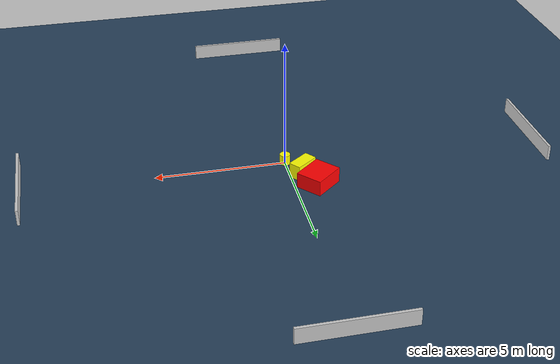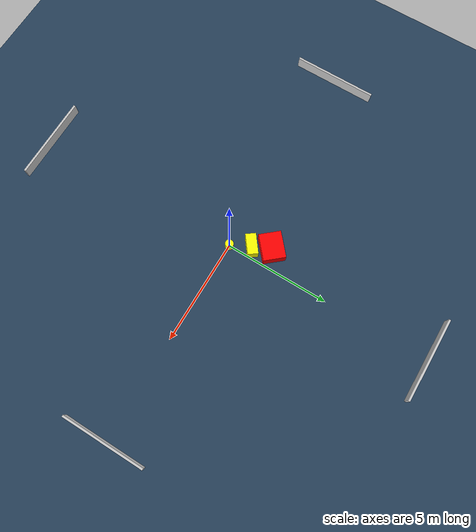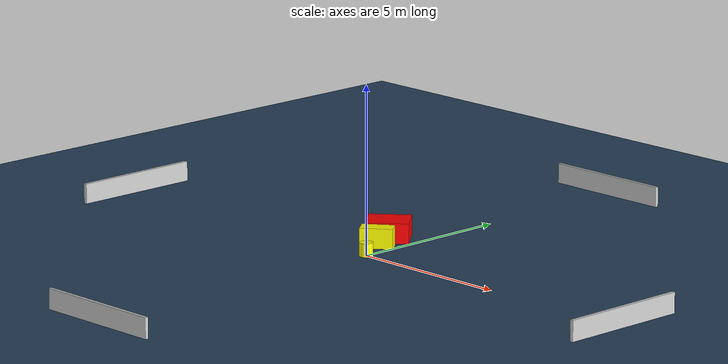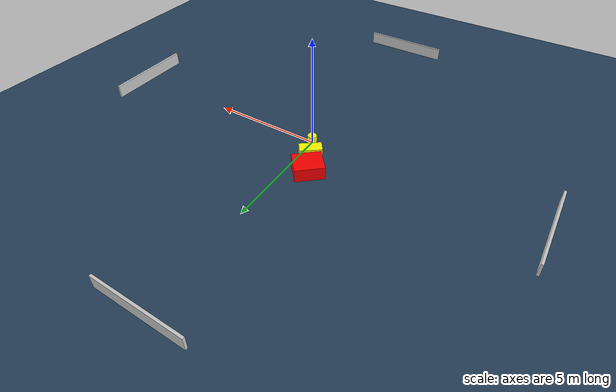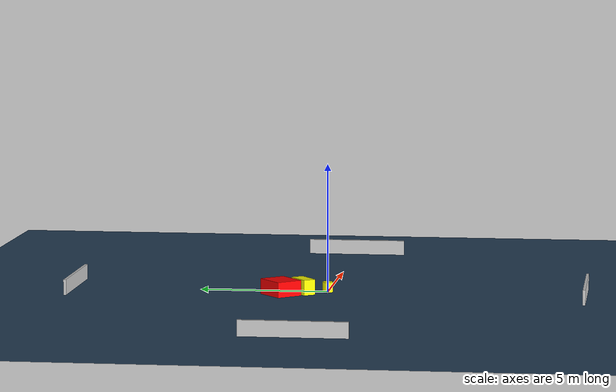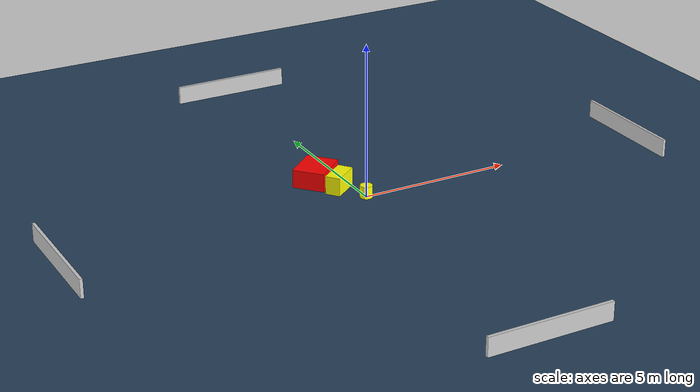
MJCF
<?xml version="1.0" ?>
<mujoco model="generated_environment">
  <option timestep="0.01" integrator="RK4" cone="elliptic"/>
  <default>
    <geom density="1"/>
  </default>
  <asset>
    <texture builtin="gradient" height="3072" name="skybox" rgb1="0.3 0.5 0.7" rgb2="0 0 0" type="skybox" width="512"/>
    <texture builtin="checker" height="300" name="groundplane" rgb1="0.2 0.3 0.4" rgb2="0.1 0.2 0.3" type="2d" width="300"/>
    <material name="groundplane" reflectance="0.2" texrepeat="5 5" texture="groundplane"/>
  </asset>
  <worldbody>
    <light dir="0 0 -1" directional="true" pos="0 0 1.5"/>
    <geom condim="3" friction="0.5 0.005 0.001" material="groundplane" name="floor" pos="0 0 0" size="0 0 0.05" type="plane"/>
    <body name="walls">
      <geom name="wall_1" condim="4" pos="-10.0 0.0 0.3" rgba="0.800000011920929 0.800000011920929 0.800000011920929 1.0" size="0.05 2.0 0.3" type="box"/>
      <geom name="wall_2" condim="4" pos="10.0 0.0 0.3" rgba="0.800000011920929 0.800000011920929 0.800000011920929 1.0" size="0.05 2.0 0.3" type="box"/>
      <geom name="wall_3" condim="4" pos="0.0 -10.0 0.3" rgba="0.800000011920929 0.800000011920929 0.800000011920929 1.0" size="2.0 0.05 0.3" type="box"/>
      <geom name="wall_4" condim="4" pos="0.0 10.0 0.3" rgba="0.800000011920929 0.800000011920929 0.800000011920929 1.0" size="2.0 0.05 0.3" type="box"/>
    </body>
    <body name="robot">
      <joint name="joint_x" type="slide" pos="0 0 0" axis="1 0 0"/>
      <joint name="joint_y" type="slide" pos="0 0 0" axis="0 1 0"/>
      <geom name="robot" type="cylinder" pos="0.0 0.0 0.2" size="0.2 0.2 0.0" mass="5.0" friction="1.0 0.005 0.0001" condim="4" rgba="1.0 1.0 0.0 1.0"/>
    </body>
    <body name="obstacle_1_movable">
      <geom name="obstacle_1_movable" condim="4" pos="-0.47937702636254725 0.8953704811904868 0.3" euler="0 0 37.29694171384823" friction="0.0 0.005 0.001" rgba="1.0 1.0 0.0 1.0" size="0.48468779757880137 0.24634950019353263 0.3" type="box" mass="0.1"/>
      <joint type="free"/>
    </body>
    <body name="obstacle_2_static">
      <geom name="obstacle_2_static" condim="4" pos="-0.8744888507337639 1.728763685962295 0.3" euler="0 0 310.8771742221865" friction="0.0 0.005 0.001" rgba="1.0 0.0 0.0 1.0" size="0.5216603090319816 0.6289445413479668 0.3" type="box"/>
    </body>
  </worldbody>
  <actuator>
    <motor name="actuator_x" joint="joint_x" gear="1" ctrlrange="-1 1"/>
    <motor name="actuator_y" joint="joint_y" gear="1" ctrlrange="-1 1"/>
  </actuator>
</mujoco>
